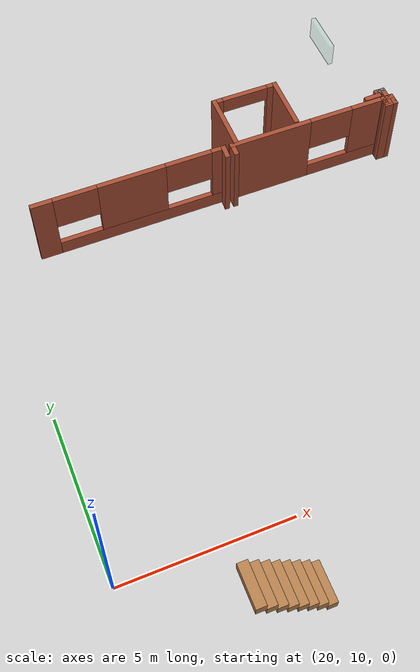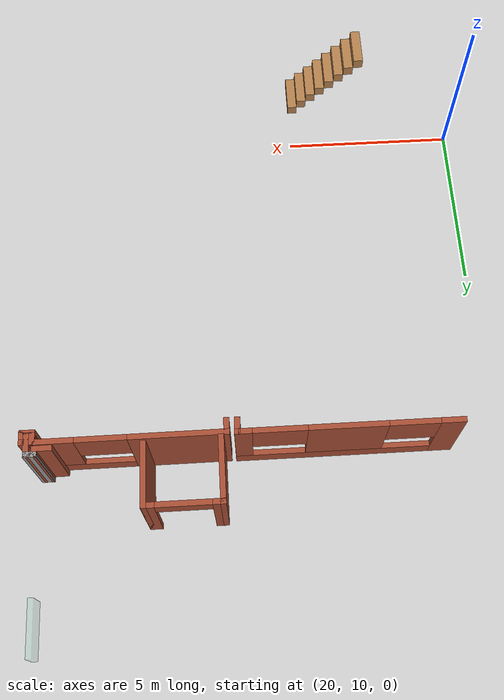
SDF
<sdf version="1.6">
 <world name="default">
  <model name="ground_plane">
   <static>1</static>
   <link name="link">
    <collision name="collision">
     <geometry><plane><normal>0 0 1</normal><size>100 100</size></plane></geometry>
     <surface><friction><ode><mu>100</mu><mu2>50</mu2></ode></friction></surface>
    </collision>
    <visual name="visual">
     <cast_shadows>0</cast_shadows>
     <geometry><plane><normal>0 0 1</normal><size>100 100</size></plane></geometry>
     <material>
      <script><uri>file://media/materials/scripts/gazebo.material</uri><name>Gazebo/Grey</name></script>
     </material>
    </visual>
   </link>
  </model>
  <model name="CVSSP">
   <pose>23.8714 24.094 0 0 -0 0</pose>
   <link name="Stairs_6">
    <visual name="Stairs_6_Visual_0">
     <pose>0.989254 -16.0013 0.15625 0 -0 -1.5708</pose>
     <geometry><box><size>1.145 0.28375 0.3125</size></box></geometry>
     <material>
      <script><uri>file://media/materials/scripts/gazebo.material</uri><name>Gazebo/Wood</name></script>
      <ambient>1 1 1 1</ambient>
     </material>
    </visual>
    <collision name="Stairs_6_Collision_0">
     <geometry><box><size>1.145 0.28375 0.3125</size></box></geometry>
     <pose>0.989254 -16.0013 0.15625 0 -0 -1.5708</pose>
    </collision>
    <visual name="Stairs_6_Visual_1">
     <pose>0.705504 -16.0013 0.46875 0 -0 -1.5708</pose>
     <geometry><box><size>1.145 0.28375 0.3125</size></box></geometry>
     <material>
      <script><uri>file://media/materials/scripts/gazebo.material</uri><name>Gazebo/Wood</name></script>
      <ambient>1 1 1 1</ambient>
     </material>
    </visual>
    <collision name="Stairs_6_Collision_1">
     <geometry><box><size>1.145 0.28375 0.3125</size></box></geometry>
     <pose>0.705504 -16.0013 0.46875 0 -0 -1.5708</pose>
    </collision>
    <visual name="Stairs_6_Visual_2">
     <pose>0.421754 -16.0013 0.78125 0 -0 -1.5708</pose>
     <geometry><box><size>1.145 0.28375 0.3125</size></box></geometry>
     <material>
      <script><uri>file://media/materials/scripts/gazebo.material</uri><name>Gazebo/Wood</name></script>
      <ambient>1 1 1 1</ambient>
     </material>
    </visual>
    <collision name="Stairs_6_Collision_2">
     <geometry><box><size>1.145 0.28375 0.3125</size></box></geometry>
     <pose>0.421754 -16.0013 0.78125 0 -0 -1.5708</pose>
    </collision>
    <visual name="Stairs_6_Visual_3">
     <pose>0.138004 -16.0013 1.09375 0 -0 -1.5708</pose>
     <geometry><box><size>1.145 0.28375 0.3125</size></box></geometry>
     <material>
      <script><uri>file://media/materials/scripts/gazebo.material</uri><name>Gazebo/Wood</name></script>
      <ambient>1 1 1 1</ambient>
     </material>
    </visual>
    <collision name="Stairs_6_Collision_3">
     <geometry><box><size>1.145 0.28375 0.3125</size></box></geometry>
     <pose>0.138004 -16.0013 1.09375 0 -0 -1.5708</pose>
    </collision>
    <visual name="Stairs_6_Visual_4">
     <pose>-0.145746 -16.0013 1.40625 0 -0 -1.5708</pose>
     <geometry><box><size>1.145 0.28375 0.3125</size></box></geometry>
     <material>
      <script><uri>file://media/materials/scripts/gazebo.material</uri><name>Gazebo/Wood</name></script>
      <ambient>1 1 1 1</ambient>
     </material>
    </visual>
    <collision name="Stairs_6_Collision_4">
     <geometry><box><size>1.145 0.28375 0.3125</size></box></geometry>
     <pose>-0.145746 -16.0013 1.40625 0 -0 -1.5708</pose>
    </collision>
    <visual name="Stairs_6_Visual_5">
     <pose>-0.429496 -16.0013 1.71875 0 -0 -1.5708</pose>
     <geometry><box><size>1.145 0.28375 0.3125</size></box></geometry>
     <material>
      <script><uri>file://media/materials/scripts/gazebo.material</uri><name>Gazebo/Wood</name></script>
      <ambient>1 1 1 1</ambient>
     </material>
    </visual>
    <collision name="Stairs_6_Collision_5">
     <geometry><box><size>1.145 0.28375 0.3125</size></box></geometry>
     <pose>-0.429496 -16.0013 1.71875 0 -0 -1.5708</pose>
    </collision>
    <visual name="Stairs_6_Visual_6">
     <pose>-0.713246 -16.0013 2.03125 0 -0 -1.5708</pose>
     <geometry><box><size>1.145 0.28375 0.3125</size></box></geometry>
     <material>
      <script><uri>file://media/materials/scripts/gazebo.material</uri><name>Gazebo/Wood</name></script>
      <ambient>1 1 1 1</ambient>
     </material>
    </visual>
    <collision name="Stairs_6_Collision_6">
     <geometry><box><size>1.145 0.28375 0.3125</size></box></geometry>
     <pose>-0.713246 -16.0013 2.03125 0 -0 -1.5708</pose>
    </collision>
    <visual name="Stairs_6_Visual_7">
     <pose>-0.996996 -16.0013 2.34375 0 -0 -1.5708</pose>
     <geometry><box><size>1.145 0.28375 0.3125</size></box></geometry>
     <material>
      <script><uri>file://media/materials/scripts/gazebo.material</uri><name>Gazebo/Wood</name></script>
      <ambient>1 1 1 1</ambient>
     </material>
    </visual>
    <collision name="Stairs_6_Collision_7">
     <geometry><box><size>1.145 0.28375 0.3125</size></box></geometry>
     <pose>-0.996996 -16.0013 2.34375 0 -0 -1.5708</pose>
    </collision>
   </link>
   <link name="Wall_118">
    <collision name="Wall_118_Collision">
     <geometry><box><size>0.6489 0.15 2.5</size></box></geometry>
     <pose>0 0 1.25 0 -0 0</pose>
    </collision>
    <visual name="Wall_118_Visual">
     <pose>0 0 1.25 0 -0 0</pose>
     <geometry><box><size>0.6489 0.15 2.5</size></box></geometry>
     <material>
      <script><uri>file://media/materials/scripts/gazebo.material</uri><name>Gazebo/Bricks</name></script>
      <ambient>1 1 1 1</ambient>
     </material>
    </visual>
    <pose>8.65546 -3.70564 0 0 0 -1.56013</pose>
   </link>
   <link name="Wall_119">
    <collision name="Wall_119_Collision">
     <geometry><box><size>0.297808 0.15 2.5</size></box></geometry>
     <pose>0 0 1.25 0 -0 0</pose>
    </collision>
    <visual name="Wall_119_Visual">
     <pose>0 0 1.25 0 -0 0</pose>
     <geometry><box><size>0.297808 0.15 2.5</size></box></geometry>
     <material>
      <script><uri>file://media/materials/scripts/gazebo.material</uri><name>Gazebo/Bricks</name></script>
      <ambient>1 1 1 1</ambient>
     </material>
    </visual>
    <pose>8.58427 -3.95789 0 0 0 -3.10353</pose>
   </link>
   <link name="Wall_120">
    <collision name="Wall_120_Collision">
     <geometry><box><size>0.331632 0.15 2.5</size></box></geometry>
     <pose>0 0 1.25 0 -0 0</pose>
    </collision>
    <visual name="Wall_120_Visual">
     <pose>0 0 1.25 0 -0 0</pose>
     <geometry><box><size>0.331632 0.15 2.5</size></box></geometry>
     <material>
      <script><uri>file://media/materials/scripts/gazebo.material</uri><name>Gazebo/Bricks</name></script>
      <ambient>1 1 1 1</ambient>
     </material>
    </visual>
    <pose>8.51042 -3.86996 0 0 -0 1.5708</pose>
   </link>
   <link name="Wall_121">
    <collision name="Wall_121_Collision">
     <geometry><box><size>0.41465 0.15 2.5</size></box></geometry>
     <pose>0 0 1.25 0 -0 0</pose>
    </collision>
    <visual name="Wall_121_Visual">
     <pose>0 0 1.25 0 -0 0</pose>
     <geometry><box><size>0.41465 0.15 2.5</size></box></geometry>
     <material>
      <script><uri>file://media/materials/scripts/gazebo.material</uri><name>Gazebo/Bricks</name></script>
      <ambient>1 1 1 1</ambient>
     </material>
    </visual>
    <pose>8.64275 -3.77922 0 0 -0 0</pose>
   </link>
   <link name="Wall_122">
    <collision name="Wall_122_Collision">
     <geometry><box><size>0.399527 0.15 2.5</size></box></geometry>
     <pose>0 0 1.25 0 -0 0</pose>
    </collision>
    <visual name="Wall_122_Visual">
     <pose>0 0 1.25 0 -0 0</pose>
     <geometry><box><size>0.399527 0.15 2.5</size></box></geometry>
     <material>
      <script><uri>file://media/materials/scripts/gazebo.material</uri><name>Gazebo/Bricks</name></script>
      <ambient>1 1 1 1</ambient>
     </material>
    </visual>
    <pose>8.77507 -3.90399 0 0 0 -1.5708</pose>
   </link>
   <link name="Wall_123">
    <collision name="Wall_123_Collision">
     <geometry><box><size>0.415082 0.15 2.5</size></box></geometry>
     <pose>0 0 1.25 0 -0 0</pose>
    </collision>
    <visual name="Wall_123_Visual">
     <pose>0 0 1.25 0 -0 0</pose>
     <geometry><box><size>0.415082 0.15 2.5</size></box></geometry>
     <material>
      <script><uri>file://media/materials/scripts/gazebo.material</uri><name>Gazebo/Bricks</name></script>
      <ambient>1 1 1 1</ambient>
     </material>
    </visual>
    <pose>8.64275 -4.02875 0 0 -0 3.14159</pose>
   </link>
   <link name="Wall_465">
    <collision name="Wall_465_Collision">
     <geometry><box><size>0.529047 0.15 2.5</size></box></geometry>
     <pose>0 0 1.25 0 -0 0</pose>
    </collision>
    <visual name="Wall_465_Visual">
     <pose>0 0 1.25 0 -0 0</pose>
     <geometry><box><size>0.529047 0.15 2.5</size></box></geometry>
     <material>
      <script><uri>file://media/materials/scripts/gazebo.material</uri><name>Gazebo/Bricks</name></script>
      <ambient>1 1 1 1</ambient>
     </material>
    </visual>
    <pose>8.25042 -3.5996 0 0 -0 0.010433</pose>
   </link>
   <link name="Wall_466">
    <collision name="Wall_466_Collision">
     <geometry><box><size>0.28943 0.15 2.5</size></box></geometry>
     <pose>0 0 1.25 0 -0 0</pose>
    </collision>
    <visual name="Wall_466_Visual">
     <pose>0 0 1.25 0 -0 0</pose>
     <geometry><box><size>0.28943 0.15 2.5</size></box></geometry>
     <material>
      <script><uri>file://media/materials/scripts/gazebo.material</uri><name>Gazebo/Bricks</name></script>
      <ambient>1 1 1 1</ambient>
     </material>
    </visual>
    <pose>8.4463 -3.5282 0 0 -0 1.47944</pose>
   </link>
   <link name="Wall_468">
    <collision name="Wall_468_Collision">
     <geometry><box><size>1.81156 0.15 2.5</size></box></geometry>
     <pose>0 0 1.25 0 -0 0</pose>
    </collision>
    <visual name="Wall_468_Visual">
     <pose>0 0 1.25 0 -0 0</pose>
     <geometry><box><size>1.81156 0.15 2.5</size></box></geometry>
     <material>
      <script><uri>file://media/materials/scripts/gazebo.material</uri><name>Gazebo/Bricks</name></script>
      <ambient>1 1 1 1</ambient>
     </material>
    </visual>
    <pose>3.68791 -2.82478 0 0 -0 1.5708</pose>
   </link>
   <link name="Wall_469">
    <pose>4.68485 -1.99401 0 0 -0 0</pose>
    <visual name="Wall_469_Visual_0">
     <pose>-0.899938 0 1.25 0 -0 0</pose>
     <geometry><box><size>0.343992 0.15 2.5</size></box></geometry>
     <material>
      <script><uri>file://media/materials/scripts/gazebo.material</uri><name>Gazebo/Bricks</name></script>
      <ambient>1 1 1 1</ambient>
     </material>
    </visual>
    <collision name="Wall_469_Collision_0">
     <geometry><box><size>0.343992 0.15 2.5</size></box></geometry>
     <pose>-0.899938 0 1.25 0 -0 0</pose>
    </collision>
    <visual name="Wall_469_Visual_1">
     <pose>0.897049 0 1.25 0 -0 0</pose>
     <geometry><box><size>0.349769 0.15 2.5</size></box></geometry>
     <material>
      <script><uri>file://media/materials/scripts/gazebo.material</uri><name>Gazebo/Bricks</name></script>
      <ambient>1 1 1 1</ambient>
     </material>
    </visual>
    <collision name="Wall_469_Collision_1">
     <geometry><box><size>0.349769 0.15 2.5</size></box></geometry>
     <pose>0.897049 0 1.25 0 -0 0</pose>
    </collision>
    <visual name="Wall_469_Visual_2">
     <pose>-0.002889 0 2.25 0 -0 0</pose>
     <geometry><box><size>1.45011 0.15 0.5</size></box></geometry>
     <material>
      <script><uri>file://media/materials/scripts/gazebo.material</uri><name>Gazebo/Bricks</name></script>
      <ambient>1 1 1 1</ambient>
     </material>
    </visual>
    <collision name="Wall_469_Collision_2">
     <geometry><box><size>1.45011 0.15 0.5</size></box></geometry>
     <pose>-0.002889 0 2.25 0 -0 0</pose>
    </collision>
   </link>
   <link name="Wall_470">
    <collision name="Wall_470_Collision">
     <geometry><box><size>1.75 0.15 2.5</size></box></geometry>
     <pose>0 0 1.25 0 -0 0</pose>
    </collision>
    <visual name="Wall_470_Visual">
     <pose>0 0 1.25 0 -0 0</pose>
     <geometry><box><size>1.75 0.15 2.5</size></box></geometry>
     <material>
      <script><uri>file://media/materials/scripts/gazebo.material</uri><name>Gazebo/Bricks</name></script>
      <ambient>1 1 1 1</ambient>
     </material>
    </visual>
    <pose>5.68178 -2.79401 0 0 0 -1.5708</pose>
   </link>
   <link name="Wall_809">
    <pose>0.343033 -3.76669 0 0 -0 0</pose>
    <visual name="Wall_809_Visual_0">
     <pose>-2.66868 0 1.25 0 -0 0</pose>
     <geometry><box><size>0.662631 0.15 2.5</size></box></geometry>
     <material>
      <script><uri>file://media/materials/scripts/gazebo.material</uri><name>Gazebo/Bricks</name></script>
      <ambient>1 1 1 1</ambient>
     </material>
    </visual>
    <collision name="Wall_809_Collision_0">
     <geometry><box><size>0.662631 0.15 2.5</size></box></geometry>
     <pose>-2.66868 0 1.25 0 -0 0</pose>
    </collision>
    <visual name="Wall_809_Visual_1">
     <pose>0.331316 0 0.25 0 -0 0</pose>
     <geometry><box><size>5.33737 0.15 0.5</size></box></geometry>
     <material>
      <script><uri>file://media/materials/scripts/gazebo.material</uri><name>Gazebo/Bricks</name></script>
      <ambient>1 1 1 1</ambient>
     </material>
    </visual>
    <collision name="Wall_809_Collision_1">
     <geometry><box><size>5.33737 0.15 0.5</size></box></geometry>
     <pose>0.331316 0 0.25 0 -0 0</pose>
    </collision>
    <visual name="Wall_809_Visual_2">
     <pose>0.0492 0 1.5 0 -0 0</pose>
     <geometry><box><size>2.09736 0.15 2</size></box></geometry>
     <material>
      <script><uri>file://media/materials/scripts/gazebo.material</uri><name>Gazebo/Bricks</name></script>
      <ambient>1 1 1 1</ambient>
     </material>
    </visual>
    <collision name="Wall_809_Collision_2">
     <geometry><box><size>2.09736 0.15 2</size></box></geometry>
     <pose>0.0492 0 1.5 0 -0 0</pose>
    </collision>
    <visual name="Wall_809_Visual_3">
     <pose>2.76811 0 1.5 0 -0 0</pose>
     <geometry><box><size>0.463782 0.15 2</size></box></geometry>
     <material>
      <script><uri>file://media/materials/scripts/gazebo.material</uri><name>Gazebo/Bricks</name></script>
      <ambient>1 1 1 1</ambient>
     </material>
    </visual>
    <collision name="Wall_809_Collision_3">
     <geometry><box><size>0.463782 0.15 2</size></box></geometry>
     <pose>2.76811 0 1.5 0 -0 0</pose>
    </collision>
    <visual name="Wall_809_Visual_4">
     <pose>-1.66843 0 1.9 0 -0 0</pose>
     <geometry><box><size>1.33789 0.15 1.2</size></box></geometry>
     <material>
      <script><uri>file://media/materials/scripts/gazebo.material</uri><name>Gazebo/Bricks</name></script>
      <ambient>1 1 1 1</ambient>
     </material>
    </visual>
    <collision name="Wall_809_Collision_4">
     <geometry><box><size>1.33789 0.15 1.2</size></box></geometry>
     <pose>-1.66843 0 1.9 0 -0 0</pose>
    </collision>
    <visual name="Wall_809_Visual_5">
     <pose>1.81705 0 1.9 0 -0 0</pose>
     <geometry><box><size>1.43833 0.15 1.2</size></box></geometry>
     <material>
      <script><uri>file://media/materials/scripts/gazebo.material</uri><name>Gazebo/Bricks</name></script>
      <ambient>1 1 1 1</ambient>
     </material>
    </visual>
    <collision name="Wall_809_Collision_5">
     <geometry><box><size>1.43833 0.15 1.2</size></box></geometry>
     <pose>1.81705 0 1.9 0 -0 0</pose>
    </collision>
   </link>
   <link name="Wall_810">
    <collision name="Wall_810_Collision">
     <geometry><box><size>0.453959 0.15 2.5</size></box></geometry>
     <pose>0 0 1.25 0 -0 0</pose>
    </collision>
    <visual name="Wall_810_Visual">
     <pose>0 0 1.25 0 -0 0</pose>
     <geometry><box><size>0.453959 0.15 2.5</size></box></geometry>
     <material>
      <script><uri>file://media/materials/scripts/gazebo.material</uri><name>Gazebo/Bricks</name></script>
      <ambient>1 1 1 1</ambient>
     </material>
    </visual>
    <pose>3.26225 -3.93012 0 0 0 -1.60885</pose>
   </link>
   <link name="Wall_812">
    <collision name="Wall_812_Collision">
     <geometry><box><size>0.451586 0.15 2.5</size></box></geometry>
     <pose>0 0 1.25 0 -0 0</pose>
    </collision>
    <visual name="Wall_812_Visual">
     <pose>0 0 1.25 0 -0 0</pose>
     <geometry><box><size>0.451586 0.15 2.5</size></box></geometry>
     <material>
      <script><uri>file://media/materials/scripts/gazebo.material</uri><name>Gazebo/Bricks</name></script>
      <ambient>1 1 1 1</ambient>
     </material>
    </visual>
    <pose>3.53608 -3.93164 0 0 -0 1.5708</pose>
   </link>
   <link name="Wall_813">
    <pose>6.02262 -3.77551 0 0 -0 0.002326</pose>
    <visual name="Wall_813_Visual_0">
     <pose>-1.25053 0 1.25 0 -0 0</pose>
     <geometry><box><size>2.62204 0.15 2.5</size></box></geometry>
     <material>
      <script><uri>file://media/materials/scripts/gazebo.material</uri><name>Gazebo/Bricks</name></script>
      <ambient>1 1 1 1</ambient>
     </material>
    </visual>
    <collision name="Wall_813_Collision_0">
     <geometry><box><size>2.62204 0.15 2.5</size></box></geometry>
     <pose>-1.25053 0 1.25 0 -0 0</pose>
    </collision>
    <visual name="Wall_813_Visual_1">
     <pose>1.31102 0 0.25 0 -0 0</pose>
     <geometry><box><size>2.50105 0.15 0.5</size></box></geometry>
     <material>
      <script><uri>file://media/materials/scripts/gazebo.material</uri><name>Gazebo/Bricks</name></script>
      <ambient>1 1 1 1</ambient>
     </material>
    </visual>
    <collision name="Wall_813_Collision_1">
     <geometry><box><size>2.50105 0.15 0.5</size></box></geometry>
     <pose>1.31102 0 0.25 0 -0 0</pose>
    </collision>
    <visual name="Wall_813_Visual_2">
     <pose>1.9938 0 1.5 0 -0 0</pose>
     <geometry><box><size>1.13549 0.15 2</size></box></geometry>
     <material>
      <script><uri>file://media/materials/scripts/gazebo.material</uri><name>Gazebo/Bricks</name></script>
      <ambient>1 1 1 1</ambient>
     </material>
    </visual>
    <collision name="Wall_813_Collision_2">
     <geometry><box><size>1.13549 0.15 2</size></box></geometry>
     <pose>1.9938 0 1.5 0 -0 0</pose>
    </collision>
    <visual name="Wall_813_Visual_3">
     <pose>0.743275 0 1.9 0 -0 0</pose>
     <geometry><box><size>1.36556 0.15 1.2</size></box></geometry>
     <material>
      <script><uri>file://media/materials/scripts/gazebo.material</uri><name>Gazebo/Bricks</name></script>
      <ambient>1 1 1 1</ambient>
     </material>
    </visual>
    <collision name="Wall_813_Collision_3">
     <geometry><box><size>1.36556 0.15 1.2</size></box></geometry>
     <pose>0.743275 0 1.9 0 -0 0</pose>
    </collision>
   </link>
   <link name="Wall_91">
    <collision name="Wall_91_Collision">
     <geometry><box><size>0.350158 0.15 2.5</size></box></geometry>
     <pose>0 0 1.25 0 -0 0</pose>
    </collision>
    <visual name="Wall_91_Visual">
     <pose>0 0 1.25 0 -0 0</pose>
     <geometry><box><size>0.350158 0.15 2.5</size></box></geometry>
     <material>
      <script><uri>file://media/materials/scripts/gazebo.material</uri><name>Gazebo/Grey</name></script>
      <ambient>1 1 1 1</ambient>
     </material>
    </visual>
    <pose>8.55273 -3.45749 0 0 -0 0.012863</pose>
   </link>
   <link name="Wall_92">
    <collision name="Wall_92_Collision">
     <geometry><box><size>0.350158 0.15 2.5</size></box></geometry>
     <pose>0 0 1.25 0 -0 0</pose>
    </collision>
    <visual name="Wall_92_Visual">
     <pose>0 0 1.25 0 -0 0</pose>
     <geometry><box><size>0.350158 0.15 2.5</size></box></geometry>
     <material>
      <script><uri>file://media/materials/scripts/gazebo.material</uri><name>Gazebo/Bricks</name></script>
      <ambient>1 1 1 1</ambient>
     </material>
    </visual>
    <pose>8.55273 -3.45749 0 0 0 -3.12873</pose>
   </link>
   <static>1</static>
  </model>
  <model name="window_0_clone_clone">
   <link name="link">
    <inertial>
     <mass>0.185318</mass>
     <inertia>
      <ixx>0.0157792</ixx>
      <ixy>0</ixy>
      <ixz>0</ixz>
      <iyy>0.0398142</iyy>
      <iyz>0</iyz>
      <izz>0.0247071</izz>
     </inertia>
    </inertial>
    <visual name="visual">
     <geometry><box><size>1.44901 0.147514 0.798588</size></box></geometry>
     <material>
      <script><name>Gazebo/Grey</name><uri>file://media/materials/scripts/gazebo.material</uri></script>
      <shader type="pixel"><normal_map>__default__</normal_map></shader>
      <ambient>0.435 0.796 0.675 1</ambient>
      <diffuse>0.7 0.7 0.7 1</diffuse>
      <specular>0.01 0.01 0.01 1</specular>
      <emissive>0 0 0 1</emissive>
     </material>
     <transparency>0.8</transparency>
    </visual>
    <collision name="collision">
     <geometry><box><size>1.44901 0.147514 0.798588</size></box></geometry>
     <surface>
      <friction>
       <ode><mu>1</mu><mu2>1</mu2><fdir1>0 0 0</fdir1><slip1>0</slip1><slip2>0</slip2></ode>
       <torsional>
        <coefficient>1</coefficient>
        <patch_radius>0</patch_radius>
        <surface_radius>0</surface_radius>
        <use_patch_radius>1</use_patch_radius>
        <ode><slip>0</slip></ode>
       </torsional>
      </friction>
      <bounce><restitution_coefficient>0</restitution_coefficient><threshold>1e+06</threshold></bounce>
      <contact>
       <collide_without_contact>0</collide_without_contact>
       <collide_without_contact_bitmask>1</collide_without_contact_bitmask>
       <collide_bitmask>1</collide_bitmask>
       <ode>
        <soft_cfm>0</soft_cfm>
        <soft_erp>0.2</soft_erp>
        <kp>1e+13</kp>
        <kd>1</kd>
        <max_vel>0.01</max_vel>
        <min_depth>0</min_depth>
       </ode>
       <bullet>
        <split_impulse>1</split_impulse>
        <split_impulse_penetration_threshold>-0.01</split_impulse_penetration_threshold>
        <soft_cfm>0</soft_cfm>
        <soft_erp>0.2</soft_erp>
        <kp>1e+13</kp>
        <kd>1</kd>
       </bullet>
      </contact>
     </surface>
    </collision>
   </link>
   <static>1</static>
   <pose>32.4979 24.7031 0.904256 0 -0 1.57547</pose>
  </model>
 </world>
</sdf>
